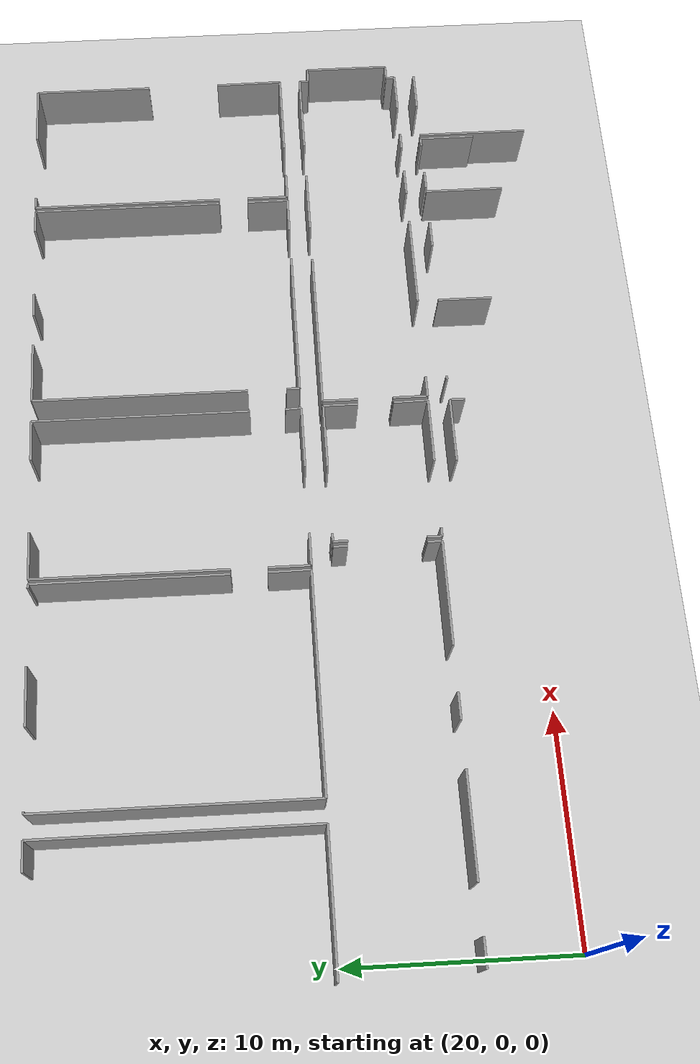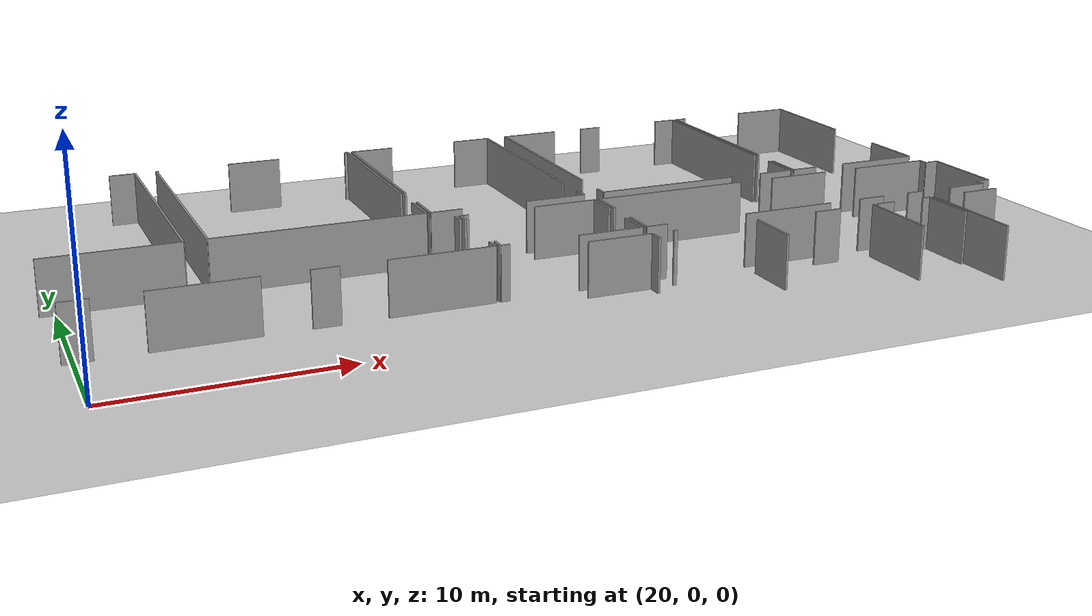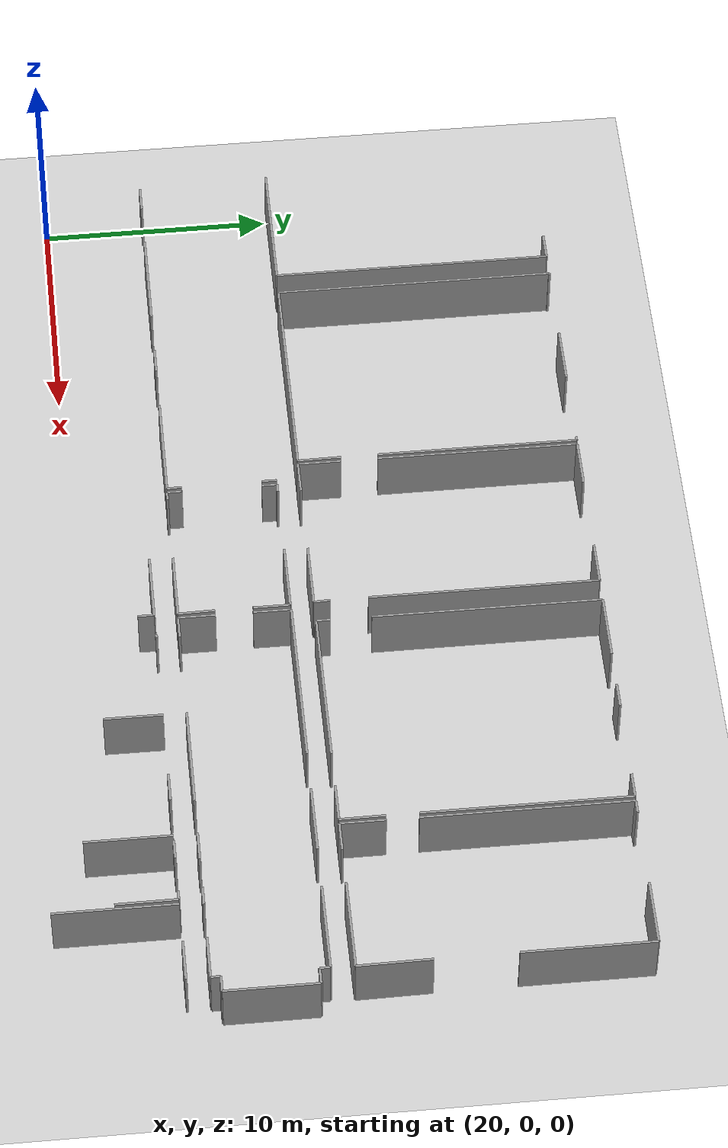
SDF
<sdf version="1.6">
 <world name="default">
  <model name="ground_plane">
   <static>1</static>
   <link name="link">
    <collision name="collision">
     <geometry><plane><normal>0 0 1</normal><size>100 100</size></plane></geometry>
     <surface><friction><ode><mu>100</mu><mu2>50</mu2></ode></friction></surface>
    </collision>
    <visual name="visual">
     <cast_shadows>0</cast_shadows>
     <geometry><plane><normal>0 0 1</normal><size>100 100</size></plane></geometry>
     <material>
      <script><uri>file://media/materials/scripts/gazebo.material</uri><name>Gazebo/Grey</name></script>
     </material>
    </visual>
   </link>
  </model>
  <model name="50010539">
   <static>1</static>
   <link name="Wall_324">
    <collision name="Wall_324_Collision">
     <geometry><box><size>3.01770788344 0.1 2.5</size></box></geometry>
     <pose>1.50885394172 0 1.25 0 0 0</pose>
    </collision>
    <visual name="Wall_324_Visual">
     <pose>1.50885394172 0 1.25 0 0 0</pose>
     <geometry><box><size>3.01770788344 0.1 2.5</size></box></geometry>
     <material>
      <script><uri>file://media/materials/scripts/gazebo.material</uri><name>Gazebo/Grey</name></script>
      <ambient>1 1 1 1</ambient>
     </material>
    </visual>
    <pose>103.748761464 -19.4630471787 0 0 0 0.0</pose>
   </link>
   <link name="Wall_325">
    <collision name="Wall_325_Collision">
     <geometry><box><size>0.695358349635 0.1 2.5</size></box></geometry>
     <pose>0.347679174818 0 1.25 0 0 0</pose>
    </collision>
    <visual name="Wall_325_Visual">
     <pose>0.347679174818 0 1.25 0 0 0</pose>
     <geometry><box><size>0.695358349635 0.1 2.5</size></box></geometry>
     <material>
      <script><uri>file://media/materials/scripts/gazebo.material</uri><name>Gazebo/Grey</name></script>
      <ambient>1 1 1 1</ambient>
     </material>
    </visual>
    <pose>106.766469348 -19.4630471787 0 0 0 -1.57079632679</pose>
   </link>
   <link name="Wall_365">
    <collision name="Wall_365_Collision">
     <geometry><box><size>3.00513198344 0.1 2.5</size></box></geometry>
     <pose>1.50256599172 0 1.25 0 0 0</pose>
    </collision>
    <visual name="Wall_365_Visual">
     <pose>1.50256599172 0 1.25 0 0 0</pose>
     <geometry><box><size>3.00513198344 0.1 2.5</size></box></geometry>
     <material>
      <script><uri>file://media/materials/scripts/gazebo.material</uri><name>Gazebo/Grey</name></script>
      <ambient>1 1 1 1</ambient>
     </material>
    </visual>
    <pose>106.791875206 -18.4562130027 0 0 0 3.14159265359</pose>
   </link>
   <link name="Wall_366">
    <collision name="Wall_366_Collision">
     <geometry><box><size>0.409161352608 0.1 2.5</size></box></geometry>
     <pose>0.204580676304 0 1.25 0 0 0</pose>
    </collision>
    <visual name="Wall_366_Visual">
     <pose>0.204580676304 0 1.25 0 0 0</pose>
     <geometry><box><size>0.409161352608 0.1 2.5</size></box></geometry>
     <material>
      <script><uri>file://media/materials/scripts/gazebo.material</uri><name>Gazebo/Grey</name></script>
      <ambient>1 1 1 1</ambient>
     </material>
    </visual>
    <pose>100.596021443 -18.4562130027 0 0 0 3.14159265359</pose>
   </link>
   <link name="Wall_367">
    <collision name="Wall_367_Collision">
     <geometry><box><size>0.657249561749 0.1 2.5</size></box></geometry>
     <pose>0.328624780874 0 1.25 0 0 0</pose>
    </collision>
    <visual name="Wall_367_Visual">
     <pose>0.328624780874 0 1.25 0 0 0</pose>
     <geometry><box><size>0.657249561749 0.1 2.5</size></box></geometry>
     <material>
      <script><uri>file://media/materials/scripts/gazebo.material</uri><name>Gazebo/Grey</name></script>
      <ambient>1 1 1 1</ambient>
     </material>
    </visual>
    <pose>100.18686009 -18.4562130027 0 0 0 1.57079632679</pose>
   </link>
   <link name="Wall_368">
    <collision name="Wall_368_Collision">
     <geometry><box><size>0.662711821346 0.1 2.5</size></box></geometry>
     <pose>0.331355910673 0 1.25 0 0 0</pose>
    </collision>
    <visual name="Wall_368_Visual">
     <pose>0.331355910673 0 1.25 0 0 0</pose>
     <geometry><box><size>0.662711821346 0.1 2.5</size></box></geometry>
     <material>
      <script><uri>file://media/materials/scripts/gazebo.material</uri><name>Gazebo/Grey</name></script>
      <ambient>1 1 1 1</ambient>
     </material>
    </visual>
    <pose>100.18686009 -14.3385584716 0 0 0 1.57079632679</pose>
   </link>
   <link name="Wall_369">
    <collision name="Wall_369_Collision">
     <geometry><box><size>0.385025786946 0.1 2.5</size></box></geometry>
     <pose>0.192512893473 0 1.25 0 0 0</pose>
    </collision>
    <visual name="Wall_369_Visual">
     <pose>0.192512893473 0 1.25 0 0 0</pose>
     <geometry><box><size>0.385025786946 0.1 2.5</size></box></geometry>
     <material>
      <script><uri>file://media/materials/scripts/gazebo.material</uri><name>Gazebo/Grey</name></script>
      <ambient>1 1 1 1</ambient>
     </material>
    </visual>
    <pose>100.18686009 -13.6758466502 0 0 0 0.0</pose>
   </link>
   <link name="Wall_370">
    <collision name="Wall_370_Collision">
     <geometry><box><size>2.99153984909 0.1 2.5</size></box></geometry>
     <pose>1.49576992454 0 1.25 0 0 0</pose>
    </collision>
    <visual name="Wall_370_Visual">
     <pose>1.49576992454 0 1.25 0 0 0</pose>
     <geometry><box><size>2.99153984909 0.1 2.5</size></box></geometry>
     <material>
      <script><uri>file://media/materials/scripts/gazebo.material</uri><name>Gazebo/Grey</name></script>
      <ambient>1 1 1 1</ambient>
     </material>
    </visual>
    <pose>103.768578034 -13.6758466502 0 0 0 0.0</pose>
   </link>
   <link name="Wall_371">
    <collision name="Wall_371_Collision">
     <geometry><box><size>1.58392825386 0.1 2.5</size></box></geometry>
     <pose>0.791964126928 0 1.25 0 0 0</pose>
    </collision>
    <visual name="Wall_371_Visual">
     <pose>0.791964126928 0 1.25 0 0 0</pose>
     <geometry><box><size>1.58392825386 0.1 2.5</size></box></geometry>
     <material>
      <script><uri>file://media/materials/scripts/gazebo.material</uri><name>Gazebo/Grey</name></script>
      <ambient>1 1 1 1</ambient>
     </material>
    </visual>
    <pose>106.760117883 -13.6758466502 0 0 0 -1.57079632679</pose>
   </link>
   <link name="Wall_372">
    <collision name="Wall_372_Collision">
     <geometry><box><size>1.57548333442 0.1 2.5</size></box></geometry>
     <pose>0.787741667212 0 1.25 0 0 0</pose>
    </collision>
    <visual name="Wall_372_Visual">
     <pose>0.787741667212 0 1.25 0 0 0</pose>
     <geometry><box><size>1.57548333442 0.1 2.5</size></box></geometry>
     <material>
      <script><uri>file://media/materials/scripts/gazebo.material</uri><name>Gazebo/Grey</name></script>
      <ambient>1 1 1 1</ambient>
     </material>
    </visual>
    <pose>106.760117883 -16.8810497701 0 0 0 -1.55063776751</pose>
   </link>
   <link name="Wall_373">
    <collision name="Wall_373_Collision">
     <geometry><box><size>2.90947892584 0.1 2.5</size></box></geometry>
     <pose>1.45473946292 0 1.25 0 0 0</pose>
    </collision>
    <visual name="Wall_373_Visual">
     <pose>1.45473946292 0 1.25 0 0 0</pose>
     <geometry><box><size>2.90947892584 0.1 2.5</size></box></geometry>
     <material>
      <script><uri>file://media/materials/scripts/gazebo.material</uri><name>Gazebo/Grey</name></script>
      <ambient>1 1 1 1</ambient>
     </material>
    </visual>
    <pose>106.699143823 -12.6725692945 0 0 0 3.14159265359</pose>
   </link>
   <link name="Wall_374">
    <collision name="Wall_374_Collision">
     <geometry><box><size>1.49500774879 0.1 2.5</size></box></geometry>
     <pose>0.747503874393 0 1.25 0 0 0</pose>
    </collision>
    <visual name="Wall_374_Visual">
     <pose>0.747503874393 0 1.25 0 0 0</pose>
     <geometry><box><size>1.49500774879 0.1 2.5</size></box></geometry>
     <material>
      <script><uri>file://media/materials/scripts/gazebo.material</uri><name>Gazebo/Grey</name></script>
      <ambient>1 1 1 1</ambient>
     </material>
    </visual>
    <pose>100.63781408 -12.6725692945 0 0 0 3.14159265359</pose>
   </link>
   <link name="Wall_375">
    <collision name="Wall_375_Collision">
     <geometry><box><size>1.88130382866 0.1 2.5</size></box></geometry>
     <pose>0.940651914331 0 1.25 0 0 0</pose>
    </collision>
    <visual name="Wall_375_Visual">
     <pose>0.940651914331 0 1.25 0 0 0</pose>
     <geometry><box><size>1.88130382866 0.1 2.5</size></box></geometry>
     <material>
      <script><uri>file://media/materials/scripts/gazebo.material</uri><name>Gazebo/Grey</name></script>
      <ambient>1 1 1 1</ambient>
     </material>
    </visual>
    <pose>99.1428063311 -12.6725692945 0 0 0 1.57079632679</pose>
   </link>
   <link name="Wall_376">
    <collision name="Wall_376_Collision">
     <geometry><box><size>8.73948832601 0.1 2.5</size></box></geometry>
     <pose>4.369744163 0 1.25 0 0 0</pose>
    </collision>
    <visual name="Wall_376_Visual">
     <pose>4.369744163 0 1.25 0 0 0</pose>
     <geometry><box><size>8.73948832601 0.1 2.5</size></box></geometry>
     <material>
      <script><uri>file://media/materials/scripts/gazebo.material</uri><name>Gazebo/Grey</name></script>
      <ambient>1 1 1 1</ambient>
     </material>
    </visual>
    <pose>99.1428063311 -9.17926373822 0 0 0 1.57079632679</pose>
   </link>
   <link name="Wall_377">
    <collision name="Wall_377_Collision">
     <geometry><box><size>2.14831940245 0.1 2.5</size></box></geometry>
     <pose>1.07415970123 0 1.25 0 0 0</pose>
    </collision>
    <visual name="Wall_377_Visual">
     <pose>1.07415970123 0 1.25 0 0 0</pose>
     <geometry><box><size>2.14831940245 0.1 2.5</size></box></geometry>
     <material>
      <script><uri>file://media/materials/scripts/gazebo.material</uri><name>Gazebo/Grey</name></script>
      <ambient>1 1 1 1</ambient>
     </material>
    </visual>
    <pose>99.1428063311 -0.43977541221 0 0 0 0.0</pose>
   </link>
   <link name="Wall_378">
    <collision name="Wall_378_Collision">
     <geometry><box><size>1.90289880847 0.1 2.5</size></box></geometry>
     <pose>0.951449404233 0 1.25 0 0 0</pose>
    </collision>
    <visual name="Wall_378_Visual">
     <pose>0.951449404233 0 1.25 0 0 0</pose>
     <geometry><box><size>1.90289880847 0.1 2.5</size></box></geometry>
     <material>
      <script><uri>file://media/materials/scripts/gazebo.material</uri><name>Gazebo/Grey</name></script>
      <ambient>1 1 1 1</ambient>
     </material>
    </visual>
    <pose>104.763217398 -0.43977541221 0 0 0 0.0</pose>
   </link>
   <link name="Wall_379">
    <collision name="Wall_379_Collision">
     <geometry><box><size>9.89977388786 0.1 2.5</size></box></geometry>
     <pose>4.94988694393 0 1.25 0 0 0</pose>
    </collision>
    <visual name="Wall_379_Visual">
     <pose>4.94988694393 0 1.25 0 0 0</pose>
     <geometry><box><size>9.89977388786 0.1 2.5</size></box></geometry>
     <material>
      <script><uri>file://media/materials/scripts/gazebo.material</uri><name>Gazebo/Grey</name></script>
      <ambient>1 1 1 1</ambient>
     </material>
    </visual>
    <pose>106.666116206 -0.43977541221 0 0 0 -1.57079632679</pose>
   </link>
   <link name="Wall_380">
    <collision name="Wall_380_Collision">
     <geometry><box><size>0.721012940335 0.1 2.5</size></box></geometry>
     <pose>0.360506470168 0 1.25 0 0 0</pose>
    </collision>
    <visual name="Wall_380_Visual">
     <pose>0.360506470168 0 1.25 0 0 0</pose>
     <geometry><box><size>0.721012940335 0.1 2.5</size></box></geometry>
     <material>
      <script><uri>file://media/materials/scripts/gazebo.material</uri><name>Gazebo/Grey</name></script>
      <ambient>1 1 1 1</ambient>
     </material>
    </visual>
    <pose>106.666116206 -11.9523132034 0 0 0 -1.52497304739</pose>
   </link>
   <link name="Wall_381">
    <collision name="Wall_381_Collision">
     <geometry><box><size>9.75584969894 0.1 2.5</size></box></geometry>
     <pose>4.87792484947 0 1.25 0 0 0</pose>
    </collision>
    <visual name="Wall_381_Visual">
     <pose>4.87792484947 0 1.25 0 0 0</pose>
     <geometry><box><size>9.75584969894 0.1 2.5</size></box></geometry>
     <material>
      <script><uri>file://media/materials/scripts/gazebo.material</uri><name>Gazebo/Grey</name></script>
      <ambient>1 1 1 1</ambient>
     </material>
    </visual>
    <pose>98.9541678311 -12.663677244 0 0 0 3.14159265359</pose>
   </link>
   <link name="Wall_382">
    <collision name="Wall_382_Collision">
     <geometry><box><size>12.2282208277 0.1 2.5</size></box></geometry>
     <pose>6.11411041386 0 1.25 0 0 0</pose>
    </collision>
    <visual name="Wall_382_Visual">
     <pose>6.11411041386 0 1.25 0 0 0</pose>
     <geometry><box><size>12.2282208277 0.1 2.5</size></box></geometry>
     <material>
      <script><uri>file://media/materials/scripts/gazebo.material</uri><name>Gazebo/Grey</name></script>
      <ambient>1 1 1 1</ambient>
     </material>
    </visual>
    <pose>89.1983181322 -12.663677244 0 0 0 1.57079632679</pose>
   </link>
   <link name="Wall_383">
    <collision name="Wall_383_Collision">
     <geometry><box><size>0.101750463657 0.1 2.5</size></box></geometry>
     <pose>0.0508752318285 0 1.25 0 0 0</pose>
    </collision>
    <visual name="Wall_383_Visual">
     <pose>0.0508752318285 0 1.25 0 0 0</pose>
     <geometry><box><size>0.101750463657 0.1 2.5</size></box></geometry>
     <material>
      <script><uri>file://media/materials/scripts/gazebo.material</uri><name>Gazebo/Grey</name></script>
      <ambient>1 1 1 1</ambient>
     </material>
    </visual>
    <pose>89.1983181322 -0.43545641625 0 0 0 0.0</pose>
   </link>
   <link name="Wall_384">
    <collision name="Wall_384_Collision">
     <geometry><box><size>2.56383221971 0.1 2.5</size></box></geometry>
     <pose>1.28191610985 0 1.25 0 0 0</pose>
    </collision>
    <visual name="Wall_384_Visual">
     <pose>1.28191610985 0 1.25 0 0 0</pose>
     <geometry><box><size>2.56383221971 0.1 2.5</size></box></geometry>
     <material>
      <script><uri>file://media/materials/scripts/gazebo.material</uri><name>Gazebo/Grey</name></script>
      <ambient>1 1 1 1</ambient>
     </material>
    </visual>
    <pose>92.7426894642 -0.43545641625 0 0 0 0.0</pose>
   </link>
   <link name="Wall_385">
    <collision name="Wall_385_Collision">
     <geometry><box><size>0.188765529331 0.1 2.5</size></box></geometry>
     <pose>0.0943827646655 0 1.25 0 0 0</pose>
    </collision>
    <visual name="Wall_385_Visual">
     <pose>0.0943827646655 0 1.25 0 0 0</pose>
     <geometry><box><size>0.188765529331 0.1 2.5</size></box></geometry>
     <material>
      <script><uri>file://media/materials/scripts/gazebo.material</uri><name>Gazebo/Grey</name></script>
      <ambient>1 1 1 1</ambient>
     </material>
    </visual>
    <pose>98.7419018826 -0.43545641625 0 0 0 0.0</pose>
   </link>
   <link name="Wall_386">
    <collision name="Wall_386_Collision">
     <geometry><box><size>8.73110439267 0.1 2.5</size></box></geometry>
     <pose>4.36555219634 0 1.25 0 0 0</pose>
    </collision>
    <visual name="Wall_386_Visual">
     <pose>4.36555219634 0 1.25 0 0 0</pose>
     <geometry><box><size>8.73110439267 0.1 2.5</size></box></geometry>
     <material>
      <script><uri>file://media/materials/scripts/gazebo.material</uri><name>Gazebo/Grey</name></script>
      <ambient>1 1 1 1</ambient>
     </material>
    </visual>
    <pose>98.9306674119 -0.43545641625 0 0 0 -1.57079632679</pose>
   </link>
   <link name="Wall_387">
    <collision name="Wall_387_Collision">
     <geometry><box><size>1.88881772786 0.1 2.5</size></box></geometry>
     <pose>0.944408863929 0 1.25 0 0 0</pose>
    </collision>
    <visual name="Wall_387_Visual">
     <pose>0.944408863929 0 1.25 0 0 0</pose>
     <geometry><box><size>1.88881772786 0.1 2.5</size></box></geometry>
     <material>
      <script><uri>file://media/materials/scripts/gazebo.material</uri><name>Gazebo/Grey</name></script>
      <ambient>1 1 1 1</ambient>
     </material>
    </visual>
    <pose>98.9306674119 -10.7750057163 0 0 0 -1.55835413865</pose>
   </link>
   <link name="Wall_388">
    <collision name="Wall_388_Collision">
     <geometry><box><size>4.70567312822 0.1 2.5</size></box></geometry>
     <pose>2.35283656411 0 1.25 0 0 0</pose>
    </collision>
    <visual name="Wall_388_Visual">
     <pose>2.35283656411 0 1.25 0 0 0</pose>
     <geometry><box><size>4.70567312822 0.1 2.5</size></box></geometry>
     <material>
      <script><uri>file://media/materials/scripts/gazebo.material</uri><name>Gazebo/Grey</name></script>
      <ambient>1 1 1 1</ambient>
     </material>
    </visual>
    <pose>99.983105104 -18.4435100734 0 0 0 3.14159265359</pose>
   </link>
   <link name="Wall_389">
    <collision name="Wall_389_Collision">
     <geometry><box><size>1.19839434974 0.1 2.5</size></box></geometry>
     <pose>0.599197174869 0 1.25 0 0 0</pose>
    </collision>
    <visual name="Wall_389_Visual">
     <pose>0.599197174869 0 1.25 0 0 0</pose>
     <geometry><box><size>1.19839434974 0.1 2.5</size></box></geometry>
     <material>
      <script><uri>file://media/materials/scripts/gazebo.material</uri><name>Gazebo/Grey</name></script>
      <ambient>1 1 1 1</ambient>
     </material>
    </visual>
    <pose>93.2873910724 -18.4435100734 0 0 0 3.14159265359</pose>
   </link>
   <link name="Wall_390">
    <collision name="Wall_390_Collision">
     <geometry><box><size>4.48133939686 0.1 2.5</size></box></geometry>
     <pose>2.24066969843 0 1.25 0 0 0</pose>
    </collision>
    <visual name="Wall_390_Visual">
     <pose>2.24066969843 0 1.25 0 0 0</pose>
     <geometry><box><size>4.48133939686 0.1 2.5</size></box></geometry>
     <material>
      <script><uri>file://media/materials/scripts/gazebo.material</uri><name>Gazebo/Grey</name></script>
      <ambient>1 1 1 1</ambient>
     </material>
    </visual>
    <pose>90.0893015929 -18.4435100734 0 0 0 3.14159265359</pose>
   </link>
   <link name="Wall_391">
    <collision name="Wall_391_Collision">
     <geometry><box><size>1.21376489418 0.1 2.5</size></box></geometry>
     <pose>0.606882447092 0 1.25 0 0 0</pose>
    </collision>
    <visual name="Wall_391_Visual">
     <pose>0.606882447092 0 1.25 0 0 0</pose>
     <geometry><box><size>1.21376489418 0.1 2.5</size></box></geometry>
     <material>
      <script><uri>file://media/materials/scripts/gazebo.material</uri><name>Gazebo/Grey</name></script>
      <ambient>1 1 1 1</ambient>
     </material>
    </visual>
    <pose>83.5870531745 -18.4435100734 0 0 0 3.14159265359</pose>
   </link>
   <link name="Wall_398">
    <collision name="Wall_398_Collision">
     <geometry><box><size>0.641751988008 0.1 2.5</size></box></geometry>
     <pose>0.320875994004 0 1.25 0 0 0</pose>
    </collision>
    <visual name="Wall_398_Visual">
     <pose>0.320875994004 0 1.25 0 0 0</pose>
     <geometry><box><size>0.641751988008 0.1 2.5</size></box></geometry>
     <material>
      <script><uri>file://media/materials/scripts/gazebo.material</uri><name>Gazebo/Grey</name></script>
      <ambient>1 1 1 1</ambient>
     </material>
    </visual>
    <pose>99.9532532202 -13.6694951856 0 0 0 -1.57079632679</pose>
   </link>
   <link name="Wall_399">
    <collision name="Wall_399_Collision">
     <geometry><box><size>0.65348572458 0.1 2.5</size></box></geometry>
     <pose>0.32674286229 0 1.25 0 0 0</pose>
    </collision>
    <visual name="Wall_399_Visual">
     <pose>0.32674286229 0 1.25 0 0 0</pose>
     <geometry><box><size>0.65348572458 0.1 2.5</size></box></geometry>
     <material>
      <script><uri>file://media/materials/scripts/gazebo.material</uri><name>Gazebo/Grey</name></script>
      <ambient>1 1 1 1</ambient>
     </material>
    </visual>
    <pose>99.9532532202 -17.7907065369 0 0 0 -1.52509942059</pose>
   </link>
   <link name="Wall_400">
    <collision name="Wall_400_Collision">
     <geometry><box><size>6.01128020121 0.1 2.5</size></box></geometry>
     <pose>3.00564010061 0 1.25 0 0 0</pose>
    </collision>
    <visual name="Wall_400_Visual">
     <pose>3.00564010061 0 1.25 0 0 0</pose>
     <geometry><box><size>6.01128020121 0.1 2.5</size></box></geometry>
     <material>
      <script><uri>file://media/materials/scripts/gazebo.material</uri><name>Gazebo/Grey</name></script>
      <ambient>1 1 1 1</ambient>
     </material>
    </visual>
    <pose>88.1903406926 -12.6579609258 0 0 0 3.14159265359</pose>
   </link>
   <link name="Wall_404">
    <collision name="Wall_404_Collision">
     <geometry><box><size>1.24920606692 0.1 2.5</size></box></geometry>
     <pose>0.62460303346 0 1.25 0 0 0</pose>
    </collision>
    <visual name="Wall_404_Visual">
     <pose>0.62460303346 0 1.25 0 0 0</pose>
     <geometry><box><size>1.24920606692 0.1 2.5</size></box></geometry>
     <material>
      <script><uri>file://media/materials/scripts/gazebo.material</uri><name>Gazebo/Grey</name></script>
      <ambient>1 1 1 1</ambient>
     </material>
    </visual>
    <pose>86.9177612357 -0.43545641625 0 0 0 0.0</pose>
   </link>
   <link name="Wall_405">
    <collision name="Wall_405_Collision">
     <geometry><box><size>12.2225268583 0.1 2.5</size></box></geometry>
     <pose>6.11126342913 0 1.25 0 0 0</pose>
    </collision>
    <visual name="Wall_405_Visual">
     <pose>6.11126342913 0 1.25 0 0 0</pose>
     <geometry><box><size>12.2225268583 0.1 2.5</size></box></geometry>
     <material>
      <script><uri>file://media/materials/scripts/gazebo.material</uri><name>Gazebo/Grey</name></script>
      <ambient>1 1 1 1</ambient>
     </material>
    </visual>
    <pose>88.1669673027 -0.43545641625 0 0 0 -1.56888400503</pose>
   </link>
   <link name="Wall_439">
    <collision name="Wall_439_Collision">
     <geometry><box><size>1.88892558624 0.1 2.5</size></box></geometry>
     <pose>0.94446279312 0 1.25 0 0 0</pose>
    </collision>
    <visual name="Wall_439_Visual">
     <pose>0.94446279312 0 1.25 0 0 0</pose>
     <geometry><box><size>1.88892558624 0.1 2.5</size></box></geometry>
     <material>
      <script><uri>file://media/materials/scripts/gazebo.material</uri><name>Gazebo/Grey</name></script>
      <ambient>1 1 1 1</ambient>
     </material>
    </visual>
    <pose>124.990091715 -18.4620563502 0 0 0 3.14159265359</pose>
   </link>
   <link name="Wall_440">
    <collision name="Wall_440_Collision">
     <geometry><box><size>0.810446889053 0.1 2.5</size></box></geometry>
     <pose>0.405223444526 0 1.25 0 0 0</pose>
    </collision>
    <visual name="Wall_440_Visual">
     <pose>0.405223444526 0 1.25 0 0 0</pose>
     <geometry><box><size>0.810446889053 0.1 2.5</size></box></geometry>
     <material>
      <script><uri>file://media/materials/scripts/gazebo.material</uri><name>Gazebo/Grey</name></script>
      <ambient>1 1 1 1</ambient>
     </material>
    </visual>
    <pose>121.501867331 -18.4620563502 0 0 0 3.14159265359</pose>
   </link>
   <link name="Wall_441">
    <collision name="Wall_441_Collision">
     <geometry><box><size>1.2855364447 0.1 2.5</size></box></geometry>
     <pose>0.642768222352 0 1.25 0 0 0</pose>
    </collision>
    <visual name="Wall_441_Visual">
     <pose>0.642768222352 0 1.25 0 0 0</pose>
     <geometry><box><size>1.2855364447 0.1 2.5</size></box></geometry>
     <material>
      <script><uri>file://media/materials/scripts/gazebo.material</uri><name>Gazebo/Grey</name></script>
      <ambient>1 1 1 1</ambient>
     </material>
    </visual>
    <pose>119.30299027 -18.4620563502 0 0 0 3.14159265359</pose>
   </link>
   <link name="Wall_442">
    <collision name="Wall_442_Collision">
     <geometry><box><size>4.44729554635 0.1 2.5</size></box></geometry>
     <pose>2.22364777318 0 1.25 0 0 0</pose>
    </collision>
    <visual name="Wall_442_Visual">
     <pose>2.22364777318 0 1.25 0 0 0</pose>
     <geometry><box><size>4.44729554635 0.1 2.5</size></box></geometry>
     <material>
      <script><uri>file://media/materials/scripts/gazebo.material</uri><name>Gazebo/Grey</name></script>
      <ambient>1 1 1 1</ambient>
     </material>
    </visual>
    <pose>116.410533269 -18.4620563502 0 0 0 3.14159265359</pose>
   </link>
   <link name="Wall_443">
    <collision name="Wall_443_Collision">
     <geometry><box><size>0.994639363837 0.1 2.5</size></box></geometry>
     <pose>0.497319681919 0 1.25 0 0 0</pose>
    </collision>
    <visual name="Wall_443_Visual">
     <pose>0.497319681919 0 1.25 0 0 0</pose>
     <geometry><box><size>0.994639363837 0.1 2.5</size></box></geometry>
     <material>
      <script><uri>file://media/materials/scripts/gazebo.material</uri><name>Gazebo/Grey</name></script>
      <ambient>1 1 1 1</ambient>
     </material>
    </visual>
    <pose>107.994842611 -18.4620563502 0 0 0 3.14159265359</pose>
   </link>
   <link name="Wall_444">
    <collision name="Wall_444_Collision">
     <geometry><box><size>1.58824724982 0.1 2.5</size></box></geometry>
     <pose>0.794123624908 0 1.25 0 0 0</pose>
    </collision>
    <visual name="Wall_444_Visual">
     <pose>0.794123624908 0 1.25 0 0 0</pose>
     <geometry><box><size>1.58824724982 0.1 2.5</size></box></geometry>
     <material>
      <script><uri>file://media/materials/scripts/gazebo.material</uri><name>Gazebo/Grey</name></script>
      <ambient>1 1 1 1</ambient>
     </material>
    </visual>
    <pose>107.000203247 -18.4620563502 0 0 0 1.57079632679</pose>
   </link>
   <link name="Wall_445">
    <collision name="Wall_445_Collision">
     <geometry><box><size>1.62318030538 0.1 2.5</size></box></geometry>
     <pose>0.811590152689 0 1.25 0 0 0</pose>
    </collision>
    <visual name="Wall_445_Visual">
     <pose>0.811590152689 0 1.25 0 0 0</pose>
     <geometry><box><size>1.62318030538 0.1 2.5</size></box></geometry>
     <material>
      <script><uri>file://media/materials/scripts/gazebo.material</uri><name>Gazebo/Grey</name></script>
      <ambient>1 1 1 1</ambient>
     </material>
    </visual>
    <pose>107.000203247 -15.2799725617 0 0 0 1.57079632679</pose>
   </link>
   <link name="Wall_446">
    <collision name="Wall_446_Collision">
     <geometry><box><size>7.49980945606 0.1 2.5</size></box></geometry>
     <pose>3.74990472803 0 1.25 0 0 0</pose>
    </collision>
    <visual name="Wall_446_Visual">
     <pose>3.74990472803 0 1.25 0 0 0</pose>
     <geometry><box><size>7.49980945606 0.1 2.5</size></box></geometry>
     <material>
      <script><uri>file://media/materials/scripts/gazebo.material</uri><name>Gazebo/Grey</name></script>
      <ambient>1 1 1 1</ambient>
     </material>
    </visual>
    <pose>107.000203247 -13.6567922563 0 0 0 0.0</pose>
   </link>
   <link name="Wall_447">
    <collision name="Wall_447_Collision">
     <geometry><box><size>3.00678336424 0.1 2.5</size></box></geometry>
     <pose>1.50339168212 0 1.25 0 0 0</pose>
    </collision>
    <visual name="Wall_447_Visual">
     <pose>1.50339168212 0 1.25 0 0 0</pose>
     <geometry><box><size>3.00678336424 0.1 2.5</size></box></geometry>
     <material>
      <script><uri>file://media/materials/scripts/gazebo.material</uri><name>Gazebo/Grey</name></script>
      <ambient>1 1 1 1</ambient>
     </material>
    </visual>
    <pose>116.266990168 -13.6567922563 0 0 0 0.0</pose>
   </link>
   <link name="Wall_448">
    <collision name="Wall_448_Collision">
     <geometry><box><size>3.89090724321 0.1 2.5</size></box></geometry>
     <pose>1.94545362161 0 1.25 0 0 0</pose>
    </collision>
    <visual name="Wall_448_Visual">
     <pose>1.94545362161 0 1.25 0 0 0</pose>
     <geometry><box><size>3.89090724321 0.1 2.5</size></box></geometry>
     <material>
      <script><uri>file://media/materials/scripts/gazebo.material</uri><name>Gazebo/Grey</name></script>
      <ambient>1 1 1 1</ambient>
     </material>
    </visual>
    <pose>121.078859785 -13.6567922563 0 0 0 0.0</pose>
   </link>
   <link name="Wall_449">
    <collision name="Wall_449_Collision">
     <geometry><box><size>0.43202662534 0.1 2.5</size></box></geometry>
     <pose>0.21601331267 0 1.25 0 0 0</pose>
    </collision>
    <visual name="Wall_449_Visual">
     <pose>0.21601331267 0 1.25 0 0 0</pose>
     <geometry><box><size>0.43202662534 0.1 2.5</size></box></geometry>
     <material>
      <script><uri>file://media/materials/scripts/gazebo.material</uri><name>Gazebo/Grey</name></script>
      <ambient>1 1 1 1</ambient>
     </material>
    </visual>
    <pose>124.969767028 -13.6567922563 0 0 0 -1.57079632679</pose>
   </link>
   <link name="Wall_450">
    <collision name="Wall_450_Collision">
     <geometry><box><size>0.710093747618 0.1 2.5</size></box></geometry>
     <pose>0.355046873809 0 1.25 0 0 0</pose>
    </collision>
    <visual name="Wall_450_Visual">
     <pose>0.355046873809 0 1.25 0 0 0</pose>
     <geometry><box><size>0.710093747618 0.1 2.5</size></box></geometry>
     <material>
      <script><uri>file://media/materials/scripts/gazebo.material</uri><name>Gazebo/Grey</name></script>
      <ambient>1 1 1 1</ambient>
     </material>
    </visual>
    <pose>124.969767028 -14.0888188816 0 0 0 0.0</pose>
   </link>
   <link name="Wall_451">
    <collision name="Wall_451_Collision">
     <geometry><box><size>3.95924900282 0.1 2.5</size></box></geometry>
     <pose>1.97962450141 0 1.25 0 0 0</pose>
    </collision>
    <visual name="Wall_451_Visual">
     <pose>1.97962450141 0 1.25 0 0 0</pose>
     <geometry><box><size>3.95924900282 0.1 2.5</size></box></geometry>
     <material>
      <script><uri>file://media/materials/scripts/gazebo.material</uri><name>Gazebo/Grey</name></script>
      <ambient>1 1 1 1</ambient>
     </material>
    </visual>
    <pose>125.679860776 -14.0888188816 0 0 0 -1.57079632679</pose>
   </link>
   <link name="Wall_452">
    <collision name="Wall_452_Collision">
     <geometry><box><size>0.689769060745 0.1 2.5</size></box></geometry>
     <pose>0.344884530373 0 1.25 0 0 0</pose>
    </collision>
    <visual name="Wall_452_Visual">
     <pose>0.344884530373 0 1.25 0 0 0</pose>
     <geometry><box><size>0.689769060745 0.1 2.5</size></box></geometry>
     <material>
      <script><uri>file://media/materials/scripts/gazebo.material</uri><name>Gazebo/Grey</name></script>
      <ambient>1 1 1 1</ambient>
     </material>
    </visual>
    <pose>125.679860776 -18.0480678845 0 0 0 3.14159265359</pose>
   </link>
   <link name="Wall_453">
    <collision name="Wall_453_Collision">
     <geometry><box><size>0.41398846574 0.1 2.5</size></box></geometry>
     <pose>0.20699423287 0 1.25 0 0 0</pose>
    </collision>
    <visual name="Wall_453_Visual">
     <pose>0.20699423287 0 1.25 0 0 0</pose>
     <geometry><box><size>0.41398846574 0.1 2.5</size></box></geometry>
     <material>
      <script><uri>file://media/materials/scripts/gazebo.material</uri><name>Gazebo/Grey</name></script>
      <ambient>1 1 1 1</ambient>
     </material>
    </visual>
    <pose>124.990091715 -18.0480678845 0 0 0 -1.57079632679</pose>
   </link>
   <link name="Wall_454">
    <collision name="Wall_454_Collision">
     <geometry><box><size>1.69330047509 0.1 2.5</size></box></geometry>
     <pose>0.846650237545 0 1.25 0 0 0</pose>
    </collision>
    <visual name="Wall_454_Visual">
     <pose>0.846650237545 0 1.25 0 0 0</pose>
     <geometry><box><size>1.69330047509 0.1 2.5</size></box></geometry>
     <material>
      <script><uri>file://media/materials/scripts/gazebo.material</uri><name>Gazebo/Grey</name></script>
      <ambient>1 1 1 1</ambient>
     </material>
    </visual>
    <pose>117.903127461 -12.6542770763 0 0 0 3.14159265359</pose>
   </link>
   <link name="Wall_455">
    <collision name="Wall_455_Collision">
     <geometry><box><size>6.88879855695 0.1 2.5</size></box></geometry>
     <pose>3.44439927847 0 1.25 0 0 0</pose>
    </collision>
    <visual name="Wall_455_Visual">
     <pose>3.44439927847 0 1.25 0 0 0</pose>
     <geometry><box><size>6.88879855695 0.1 2.5</size></box></geometry>
     <material>
      <script><uri>file://media/materials/scripts/gazebo.material</uri><name>Gazebo/Grey</name></script>
      <ambient>1 1 1 1</ambient>
     </material>
    </visual>
    <pose>114.586392622 -12.6542770763 0 0 0 3.14159265359</pose>
   </link>
   <link name="Wall_456">
    <collision name="Wall_456_Collision">
     <geometry><box><size>0.605421610223 0.1 2.5</size></box></geometry>
     <pose>0.302710805112 0 1.25 0 0 0</pose>
    </collision>
    <visual name="Wall_456_Visual">
     <pose>0.302710805112 0 1.25 0 0 0</pose>
     <geometry><box><size>0.605421610223 0.1 2.5</size></box></geometry>
     <material>
      <script><uri>file://media/materials/scripts/gazebo.material</uri><name>Gazebo/Grey</name></script>
      <ambient>1 1 1 1</ambient>
     </material>
    </visual>
    <pose>107.697594065 -12.6542770763 0 0 0 1.57079632679</pose>
   </link>
   <link name="Wall_457">
    <collision name="Wall_457_Collision">
     <geometry><box><size>9.85162978583 0.1 2.5</size></box></geometry>
     <pose>4.92581489291 0 1.25 0 0 0</pose>
    </collision>
    <visual name="Wall_457_Visual">
     <pose>4.92581489291 0 1.25 0 0 0</pose>
     <geometry><box><size>9.85162978583 0.1 2.5</size></box></geometry>
     <material>
      <script><uri>file://media/materials/scripts/gazebo.material</uri><name>Gazebo/Grey</name></script>
      <ambient>1 1 1 1</ambient>
     </material>
    </visual>
    <pose>107.697594065 -10.291405198 0 0 0 1.57079632679</pose>
   </link>
   <link name="Wall_458">
    <collision name="Wall_458_Collision">
     <geometry><box><size>2.88229465715 0.1 2.5</size></box></geometry>
     <pose>1.44114732857 0 1.25 0 0 0</pose>
    </collision>
    <visual name="Wall_458_Visual">
     <pose>1.44114732857 0 1.25 0 0 0</pose>
     <geometry><box><size>2.88229465715 0.1 2.5</size></box></geometry>
     <material>
      <script><uri>file://media/materials/scripts/gazebo.material</uri><name>Gazebo/Grey</name></script>
      <ambient>1 1 1 1</ambient>
     </material>
    </visual>
    <pose>107.697594065 -0.43977541221 0 0 0 0.0</pose>
   </link>
   <link name="Wall_459">
    <collision name="Wall_459_Collision">
     <geometry><box><size>1.13310129316 0.1 2.5</size></box></geometry>
     <pose>0.566550646579 0 1.25 0 0 0</pose>
    </collision>
    <visual name="Wall_459_Visual">
     <pose>0.566550646579 0 1.25 0 0 0</pose>
     <geometry><box><size>1.13310129316 0.1 2.5</size></box></geometry>
     <material>
      <script><uri>file://media/materials/scripts/gazebo.material</uri><name>Gazebo/Grey</name></script>
      <ambient>1 1 1 1</ambient>
     </material>
    </visual>
    <pose>112.156322248 -0.43977541221 0 0 0 0.0</pose>
   </link>
   <link name="Wall_460">
    <collision name="Wall_460_Collision">
     <geometry><box><size>1.12547953558 0.1 2.5</size></box></geometry>
     <pose>0.56273976779 0 1.25 0 0 0</pose>
    </collision>
    <visual name="Wall_460_Visual">
     <pose>0.56273976779 0 1.25 0 0 0</pose>
     <geometry><box><size>1.12547953558 0.1 2.5</size></box></geometry>
     <material>
      <script><uri>file://media/materials/scripts/gazebo.material</uri><name>Gazebo/Grey</name></script>
      <ambient>1 1 1 1</ambient>
     </material>
    </visual>
    <pose>116.761134118 -0.43977541221 0 0 0 0.0</pose>
   </link>
   <link name="Wall_461">
    <collision name="Wall_461_Collision">
     <geometry><box><size>8.90068849877 0.1 2.5</size></box></geometry>
     <pose>4.45034424938 0 1.25 0 0 0</pose>
    </collision>
    <visual name="Wall_461_Visual">
     <pose>4.45034424938 0 1.25 0 0 0</pose>
     <geometry><box><size>8.90068849877 0.1 2.5</size></box></geometry>
     <material>
      <script><uri>file://media/materials/scripts/gazebo.material</uri><name>Gazebo/Grey</name></script>
      <ambient>1 1 1 1</ambient>
     </material>
    </visual>
    <pose>117.886613653 -0.43977541221 0 0 0 -1.57079632679</pose>
   </link>
   <link name="Wall_462">
    <collision name="Wall_462_Collision">
     <geometry><box><size>1.94653990608 0.1 2.5</size></box></geometry>
     <pose>0.973269953042 0 1.25 0 0 0</pose>
    </collision>
    <visual name="Wall_462_Visual">
     <pose>0.973269953042 0 1.25 0 0 0</pose>
     <geometry><box><size>1.94653990608 0.1 2.5</size></box></geometry>
     <material>
      <script><uri>file://media/materials/scripts/gazebo.material</uri><name>Gazebo/Grey</name></script>
      <ambient>1 1 1 1</ambient>
     </material>
    </visual>
    <pose>117.886613653 -10.7078072203 0 0 0 -1.56231255201</pose>
   </link>
   <link name="Wall_463">
    <collision name="Wall_463_Collision">
     <geometry><box><size>3.99888214222 0.1 2.5</size></box></geometry>
     <pose>1.99944107111 0 1.25 0 0 0</pose>
    </collision>
    <visual name="Wall_463_Visual">
     <pose>1.99944107111 0 1.25 0 0 0</pose>
     <geometry><box><size>3.99888214222 0.1 2.5</size></box></geometry>
     <material>
      <script><uri>file://media/materials/scripts/gazebo.material</uri><name>Gazebo/Grey</name></script>
      <ambient>1 1 1 1</ambient>
     </material>
    </visual>
    <pose>125.00533523 -12.6542770763 0 0 0 3.14159265359</pose>
   </link>
   <link name="Wall_464">
    <collision name="Wall_464_Collision">
     <geometry><box><size>1.28172556592 0.1 2.5</size></box></geometry>
     <pose>0.640862782958 0 1.25 0 0 0</pose>
    </collision>
    <visual name="Wall_464_Visual">
     <pose>0.640862782958 0 1.25 0 0 0</pose>
     <geometry><box><size>1.28172556592 0.1 2.5</size></box></geometry>
     <material>
      <script><uri>file://media/materials/scripts/gazebo.material</uri><name>Gazebo/Grey</name></script>
      <ambient>1 1 1 1</ambient>
     </material>
    </visual>
    <pose>119.383018724 -12.6542770763 0 0 0 3.14159265359</pose>
   </link>
   <link name="Wall_465">
    <collision name="Wall_465_Collision">
     <geometry><box><size>1.9330047509 0.1 2.5</size></box></geometry>
     <pose>0.966502375448 0 1.25 0 0 0</pose>
    </collision>
    <visual name="Wall_465_Visual">
     <pose>0.966502375448 0 1.25 0 0 0</pose>
     <geometry><box><size>1.9330047509 0.1 2.5</size></box></geometry>
     <material>
      <script><uri>file://media/materials/scripts/gazebo.material</uri><name>Gazebo/Grey</name></script>
      <ambient>1 1 1 1</ambient>
     </material>
    </visual>
    <pose>118.101293158 -12.6542770763 0 0 0 1.57079632679</pose>
   </link>
   <link name="Wall_466">
    <collision name="Wall_466_Collision">
     <geometry><box><size>8.92037803918 0.1 2.5</size></box></geometry>
     <pose>4.46018901959 0 1.25 0 0 0</pose>
    </collision>
    <visual name="Wall_466_Visual">
     <pose>4.46018901959 0 1.25 0 0 0</pose>
     <geometry><box><size>8.92037803918 0.1 2.5</size></box></geometry>
     <material>
      <script><uri>file://media/materials/scripts/gazebo.material</uri><name>Gazebo/Grey</name></script>
      <ambient>1 1 1 1</ambient>
     </material>
    </visual>
    <pose>118.101293158 -9.36307512512 0 0 0 1.57079632679</pose>
   </link>
   <link name="Wall_467">
    <collision name="Wall_467_Collision">
     <geometry><box><size>0.576712990015 0.1 2.5</size></box></geometry>
     <pose>0.288356495008 0 1.25 0 0 0</pose>
    </collision>
    <visual name="Wall_467_Visual">
     <pose>0.288356495008 0 1.25 0 0 0</pose>
     <geometry><box><size>0.576712990015 0.1 2.5</size></box></geometry>
     <material>
      <script><uri>file://media/materials/scripts/gazebo.material</uri><name>Gazebo/Grey</name></script>
      <ambient>1 1 1 1</ambient>
     </material>
    </visual>
    <pose>118.101293158 -0.442697085948 0 0 0 0.0</pose>
   </link>
   <link name="Wall_468">
    <collision name="Wall_468_Collision">
     <geometry><box><size>2.81878001067 0.1 2.5</size></box></geometry>
     <pose>1.40939000534 0 1.25 0 0 0</pose>
    </collision>
    <visual name="Wall_468_Visual">
     <pose>1.40939000534 0 1.25 0 0 0</pose>
     <geometry><box><size>2.81878001067 0.1 2.5</size></box></geometry>
     <material>
      <script><uri>file://media/materials/scripts/gazebo.material</uri><name>Gazebo/Grey</name></script>
      <ambient>1 1 1 1</ambient>
     </material>
    </visual>
    <pose>122.149716725 -0.442697085948 0 0 0 0.0</pose>
   </link>
   <link name="Wall_469">
    <collision name="Wall_469_Collision">
     <geometry><box><size>5.60275399507 0.1 2.5</size></box></geometry>
     <pose>2.80137699754 0 1.25 0 0 0</pose>
    </collision>
    <visual name="Wall_469_Visual">
     <pose>2.80137699754 0 1.25 0 0 0</pose>
     <geometry><box><size>5.60275399507 0.1 2.5</size></box></geometry>
     <material>
      <script><uri>file://media/materials/scripts/gazebo.material</uri><name>Gazebo/Grey</name></script>
      <ambient>1 1 1 1</ambient>
     </material>
    </visual>
    <pose>124.968496735 -0.442697085948 0 0 0 -1.57079632679</pose>
   </link>
   <link name="Wall_470">
    <collision name="Wall_470_Collision">
     <geometry><box><size>3.15930626796 0.1 2.5</size></box></geometry>
     <pose>1.57965313398 0 1.25 0 0 0</pose>
    </collision>
    <visual name="Wall_470_Visual">
     <pose>1.57965313398 0 1.25 0 0 0</pose>
     <geometry><box><size>3.15930626796 0.1 2.5</size></box></geometry>
     <material>
      <script><uri>file://media/materials/scripts/gazebo.material</uri><name>Gazebo/Grey</name></script>
      <ambient>1 1 1 1</ambient>
     </material>
    </visual>
    <pose>124.968496735 -9.4951855898 0 0 0 -1.55913575113</pose>
   </link>
   <link name="Wall_474">
    <collision name="Wall_474_Collision">
     <geometry><box><size>0.16894895963 0.1 2.5</size></box></geometry>
     <pose>0.084474479815 0 1.25 0 0 0</pose>
    </collision>
    <visual name="Wall_474_Visual">
     <pose>0.084474479815 0 1.25 0 0 0</pose>
     <geometry><box><size>0.16894895963 0.1 2.5</size></box></geometry>
     <material>
      <script><uri>file://media/materials/scripts/gazebo.material</uri><name>Gazebo/Grey</name></script>
      <ambient>1 1 1 1</ambient>
     </material>
    </visual>
    <pose>107.810650136 -19.4359899393 0 0 0 0.0</pose>
   </link>
   <link name="Wall_475">
    <collision name="Wall_475_Collision">
     <geometry><box><size>2.51329510658 0.1 2.5</size></box></geometry>
     <pose>1.25664755329 0 1.25 0 0 0</pose>
    </collision>
    <visual name="Wall_475_Visual">
     <pose>1.25664755329 0 1.25 0 0 0</pose>
     <geometry><box><size>2.51329510658 0.1 2.5</size></box></geometry>
     <material>
      <script><uri>file://media/materials/scripts/gazebo.material</uri><name>Gazebo/Grey</name></script>
      <ambient>1 1 1 1</ambient>
     </material>
    </visual>
    <pose>111.982292117 -19.4359899393 0 0 0 -1.57483977203</pose>
   </link>
   <link name="Wall_479">
    <collision name="Wall_479_Collision">
     <geometry><box><size>1.29442849521 0.1 2.5</size></box></geometry>
     <pose>0.647214247605 0 1.25 0 0 0</pose>
    </collision>
    <visual name="Wall_479_Visual">
     <pose>0.647214247605 0 1.25 0 0 0</pose>
     <geometry><box><size>1.29442849521 0.1 2.5</size></box></geometry>
     <material>
      <script><uri>file://media/materials/scripts/gazebo.material</uri><name>Gazebo/Grey</name></script>
      <ambient>1 1 1 1</ambient>
     </material>
    </visual>
    <pose>114.987805188 -19.4443738726 0 0 0 0.0</pose>
   </link>
   <link name="Wall_480">
    <collision name="Wall_480_Collision">
     <geometry><box><size>3.70010924519 0.1 2.5</size></box></geometry>
     <pose>1.8500546226 0 1.25 0 0 0</pose>
    </collision>
    <visual name="Wall_480_Visual">
     <pose>1.8500546226 0 1.25 0 0 0</pose>
     <geometry><box><size>3.70010924519 0.1 2.5</size></box></geometry>
     <material>
      <script><uri>file://media/materials/scripts/gazebo.material</uri><name>Gazebo/Grey</name></script>
      <ambient>1 1 1 1</ambient>
     </material>
    </visual>
    <pose>118.060643784 -19.4443738726 0 0 0 -1.57079632679</pose>
   </link>
   <link name="Wall_489">
    <collision name="Wall_489_Collision">
     <geometry><box><size>0.879042707248 0.1 2.5</size></box></geometry>
     <pose>0.439521353624 0 1.25 0 0 0</pose>
    </collision>
    <visual name="Wall_489_Visual">
     <pose>0.439521353624 0 1.25 0 0 0</pose>
     <geometry><box><size>0.879042707248 0.1 2.5</size></box></geometry>
     <material>
      <script><uri>file://media/materials/scripts/gazebo.material</uri><name>Gazebo/Grey</name></script>
      <ambient>1 1 1 1</ambient>
     </material>
    </visual>
    <pose>118.295647976 -19.4521226595 0 0 0 0.0</pose>
   </link>
   <link name="Wall_490">
    <collision name="Wall_490_Collision">
     <geometry><box><size>0.406493737456 0.1 2.5</size></box></geometry>
     <pose>0.203246868728 0 1.25 0 0 0</pose>
    </collision>
    <visual name="Wall_490_Visual">
     <pose>0.203246868728 0 1.25 0 0 0</pose>
     <geometry><box><size>0.406493737456 0.1 2.5</size></box></geometry>
     <material>
      <script><uri>file://media/materials/scripts/gazebo.material</uri><name>Gazebo/Grey</name></script>
      <ambient>1 1 1 1</ambient>
     </material>
    </visual>
    <pose>120.777800361 -19.4521226595 0 0 0 0.0</pose>
   </link>
   <link name="Wall_491">
    <collision name="Wall_491_Collision">
     <geometry><box><size>2.60856632592 0.1 2.5</size></box></geometry>
     <pose>1.30428316296 0 1.25 0 0 0</pose>
    </collision>
    <visual name="Wall_491_Visual">
     <pose>1.30428316296 0 1.25 0 0 0</pose>
     <geometry><box><size>2.60856632592 0.1 2.5</size></box></geometry>
     <material>
      <script><uri>file://media/materials/scripts/gazebo.material</uri><name>Gazebo/Grey</name></script>
      <ambient>1 1 1 1</ambient>
     </material>
    </visual>
    <pose>121.184294098 -19.4521226595 0 0 0 -1.56690055882</pose>
   </link>
   <link name="Wall_493">
    <collision name="Wall_493_Collision">
     <geometry><box><size>1.82541093976 0.1 2.5</size></box></geometry>
     <pose>0.912705469881 0 1.25 0 0 0</pose>
    </collision>
    <visual name="Wall_493_Visual">
     <pose>0.912705469881 0 1.25 0 0 0</pose>
     <geometry><box><size>1.82541093976 0.1 2.5</size></box></geometry>
     <material>
      <script><uri>file://media/materials/scripts/gazebo.material</uri><name>Gazebo/Grey</name></script>
      <ambient>1 1 1 1</ambient>
     </material>
    </visual>
    <pose>125.001524352 -19.441960316 0 0 0 3.14159265359</pose>
   </link>
   <link name="Wall_494">
    <collision name="Wall_494_Collision">
     <geometry><box><size>5.20083331216 0.1 2.5</size></box></geometry>
     <pose>2.60041665608 0 1.25 0 0 0</pose>
    </collision>
    <visual name="Wall_494_Visual">
     <pose>2.60041665608 0 1.25 0 0 0</pose>
     <geometry><box><size>5.20083331216 0.1 2.5</size></box></geometry>
     <material>
      <script><uri>file://media/materials/scripts/gazebo.material</uri><name>Gazebo/Grey</name></script>
      <ambient>1 1 1 1</ambient>
     </material>
    </visual>
    <pose>121.401514189 -19.441960316 0 0 0 -1.57079632679</pose>
   </link>
   <pose>-62.8 22.8208416961 0 0 0 0</pose>
  </model>
 </world>
</sdf>
